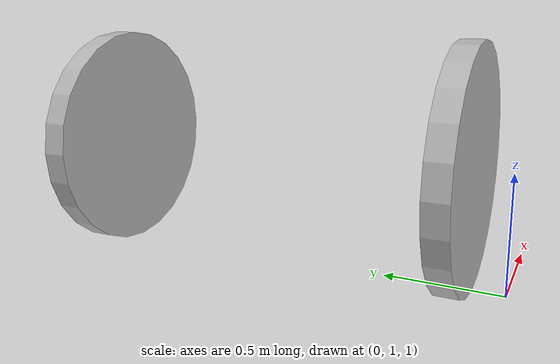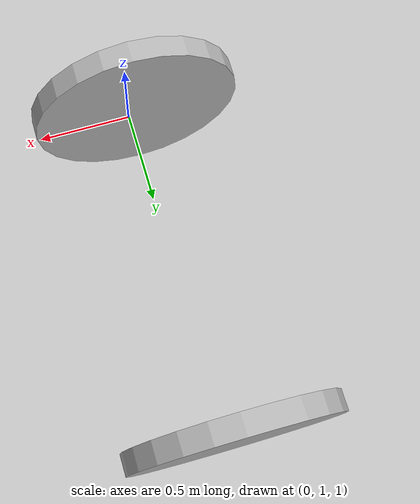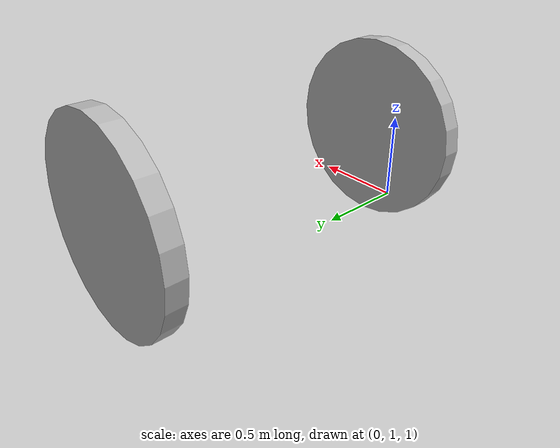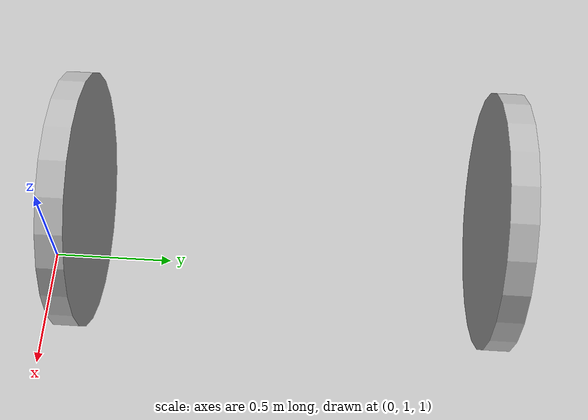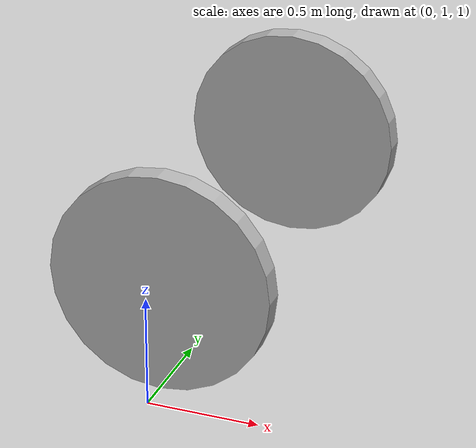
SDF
<?xml version="1.0" ?>

<sdf version="1.5">
  <model name="pads_model">
    <static>true</static>
    <link name="right_pad">
        <pose>0.0 2.8166666666666664 1.5 0.0 1.5707963267948966 1.5707963267948966</pose>
        <collision name="collision">
            <geometry>
                <cylinder>
                    <radius>0.5</radius>
                    <length>0.1</length>
                </cylinder>
            </geometry>
        </collision>
        <visual name="visual">
            <geometry>
                <cylinder>
                    <radius>0.5</radius>
                    <length>0.1</length>
                </cylinder>
            </geometry>
            <material>
                <ambient>1.00.00.01</ambient>
            </material>
        </visual>
    </link>
    <link name='left_pad'>
        <pose>0.0 1.1833333333333331 1.5 0.0 1.5707963267948966 1.5707963267948966</pose>
        <collision name='collision'>
            <geometry>
                <cylinder>
                    <radius>0.5</radius>
                    <length>0.1</length>
                </cylinder>
            </geometry>
        </collision>
        <visual name='visual'>
            <geometry>
                <cylinder>
                    <radius>0.5</radius>
                    <length>0.1</length>
                </cylinder>
            </geometry>
            <material>
                <ambient>1.00.00.01</ambient>
            </material>
        </visual>
    </link>
  </model>
</sdf>
